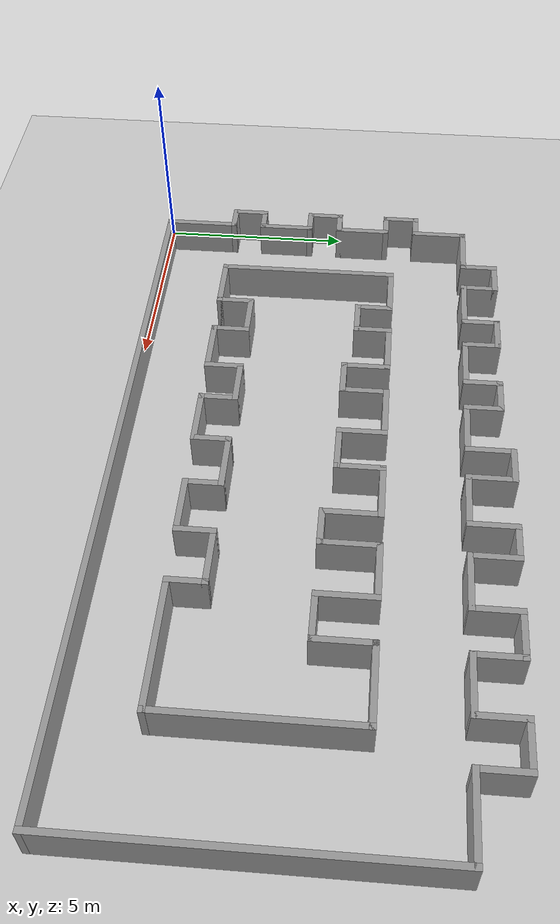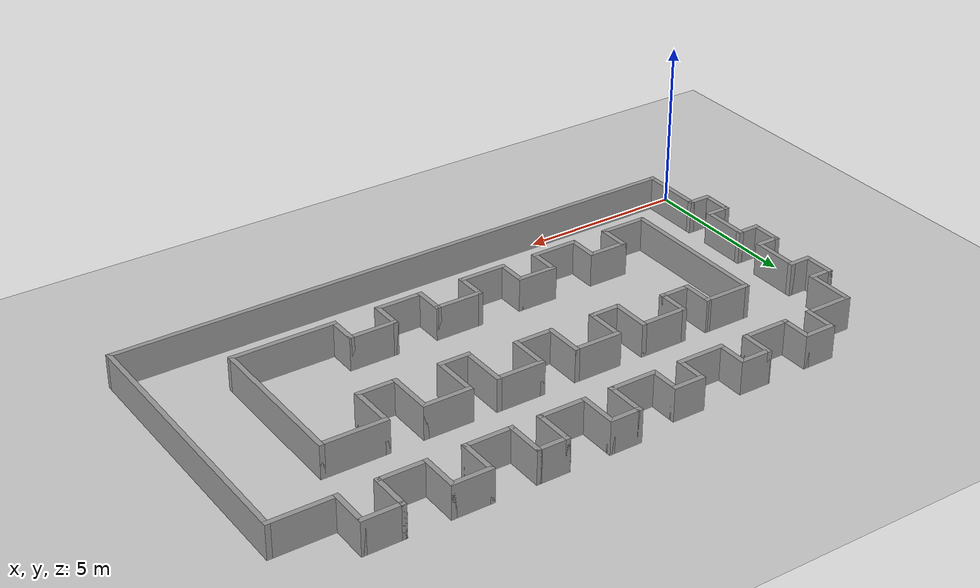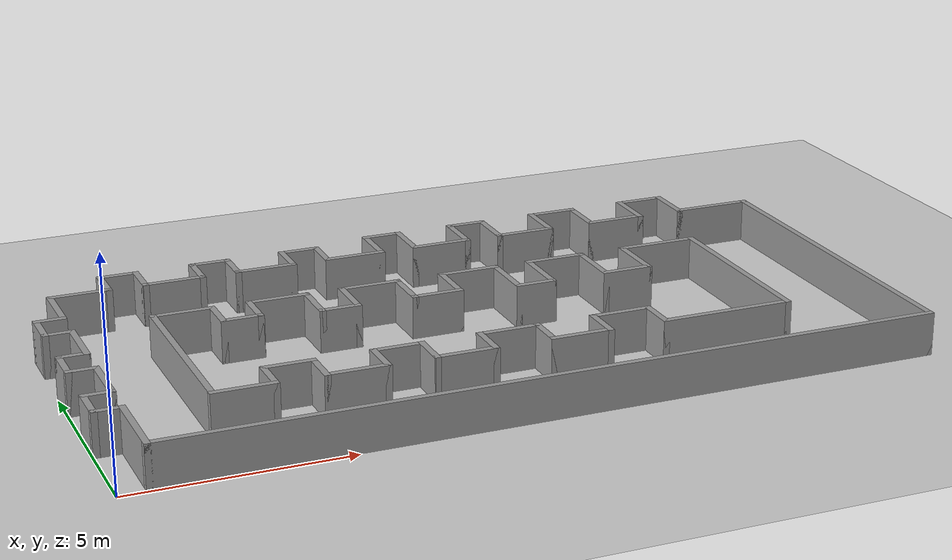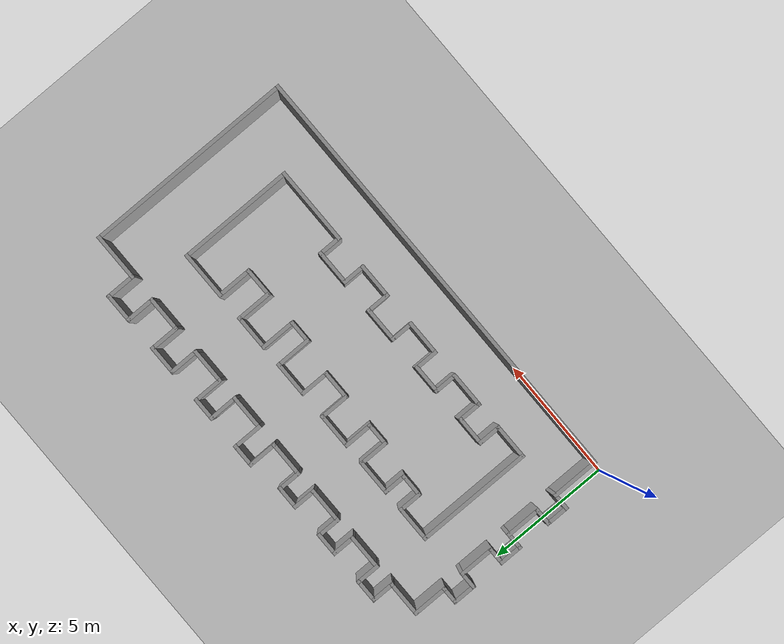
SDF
<sdf version="1.6">
 <world name="default">
  <light name="sun" type="directional">
   <pose>0 0 10 0 -0 0</pose>
   <diffuse>0.8 0.8 0.8 1</diffuse>
   <specular>0.2 0.2 0.2 1</specular>
   <attenuation>
    <range>1000</range>
    <constant>0.9</constant>
    <linear>0.01</linear>
    <quadratic>0.001</quadratic>
   </attenuation>
   <direction>-0.5 0.1 -0.9</direction>
  </light>
  <model name="ground_plane">
   <static>1</static>
   <link name="link">
    <collision name="collision">
     <geometry><plane><normal>0 0 1</normal><size>100 100</size></plane></geometry>
     <surface><friction><ode><mu>100</mu><mu2>50</mu2></ode></friction></surface>
    </collision>
    <visual name="visual">
     <cast_shadows>0</cast_shadows>
     <geometry><plane><normal>0 0 1</normal><size>100 100</size></plane></geometry>
     <material>
      <script><uri>file://media/materials/scripts/gazebo.material</uri><name>Gazebo/Grey</name></script>
     </material>
    </visual>
   </link>
  </model>
  <gravity>0 0 -9.8</gravity>
  <magnetic_field>6e-06 2.3e-05 -4.2e-05</magnetic_field>
  <atmosphere type="adiabatic"/>
  <physics name="default_physics" default="0" type="ode">
   <max_step_size>0.001</max_step_size>
   <real_time_factor>1</real_time_factor>
   <real_time_update_rate>1000</real_time_update_rate>
  </physics>
  <scene><ambient>0.4 0.4 0.4 1</ambient><background>0.7 0.7 0.7 1</background><shadows>1</shadows></scene>
  <spherical_coordinates>
   <surface_model>EARTH_WGS84</surface_model>
   <latitude_deg>0</latitude_deg>
   <longitude_deg>0</longitude_deg>
   <elevation>0</elevation>
   <heading_deg>0</heading_deg>
  </spherical_coordinates>
  <model name="park">
   <pose>9.24545 4.8784 0 0 -0 0</pose>
   <link name="Wall_1">
    <collision name="Wall_1_Collision">
     <geometry><box><size>17.9 0.15 1</size></box></geometry>
     <pose>0 0 0.5 0 -0 0</pose>
    </collision>
    <visual name="Wall_1_Visual">
     <pose>0 0 0.5 0 -0 0</pose>
     <geometry><box><size>17.9 0.15 1</size></box></geometry>
     <material>
      <script><uri>file://media/materials/scripts/gazebo.material</uri><name>Gazebo/Grey</name></script>
      <ambient>1 1 1 1</ambient>
     </material>
     <meta><layer>0</layer></meta>
    </visual>
    <pose>0.3 -4.775 0 0 -0 0</pose>
   </link>
   <link name="Wall_10">
    <collision name="Wall_10_Collision">
     <geometry><box><size>0.75 0.15 1</size></box></geometry>
     <pose>0 0 0.5 0 -0 0</pose>
    </collision>
    <visual name="Wall_10_Visual">
     <pose>0 0 0.5 0 -0 0</pose>
     <geometry><box><size>0.75 0.15 1</size></box></geometry>
     <material>
      <script><uri>file://media/materials/scripts/gazebo.material</uri><name>Gazebo/Grey</name></script>
      <ambient>1 1 1 1</ambient>
     </material>
     <meta><layer>0</layer></meta>
    </visual>
    <pose>-8.875 -2.075 0 0 -0 0</pose>
   </link>
   <link name="Wall_100">
    <collision name="Wall_100_Collision">
     <geometry><box><size>1.5 0.15 1</size></box></geometry>
     <pose>0 0 0.5 0 -0 0</pose>
    </collision>
    <visual name="Wall_100_Visual">
     <pose>0 0 0.5 0 -0 0</pose>
     <geometry><box><size>1.5 0.15 1</size></box></geometry>
     <material>
      <script><uri>file://media/materials/scripts/gazebo.material</uri><name>Gazebo/Grey</name></script>
      <ambient>1 1 1 1</ambient>
     </material>
     <meta><layer>0</layer></meta>
    </visual>
    <pose>3.675 1 0 0 -0 -1.5708</pose>
   </link>
   <link name="Wall_101">
    <collision name="Wall_101_Collision">
     <geometry><box><size>1.25 0.15 1</size></box></geometry>
     <pose>0 0 0.5 0 -0 0</pose>
    </collision>
    <visual name="Wall_101_Visual">
     <pose>0 0 0.5 0 -0 0</pose>
     <geometry><box><size>1.25 0.15 1</size></box></geometry>
     <material>
      <script><uri>file://media/materials/scripts/gazebo.material</uri><name>Gazebo/Grey</name></script>
      <ambient>1 1 1 1</ambient>
     </material>
     <meta><layer>0</layer></meta>
    </visual>
    <pose>4.225 0.325 0 0 -0 0</pose>
   </link>
   <link name="Wall_102">
    <collision name="Wall_102_Collision">
     <geometry><box><size>1.5 0.15 1</size></box></geometry>
     <pose>0 0 0.5 0 -0 0</pose>
    </collision>
    <visual name="Wall_102_Visual">
     <pose>0 0 0.5 0 -0 0</pose>
     <geometry><box><size>1.5 0.15 1</size></box></geometry>
     <material>
      <script><uri>file://media/materials/scripts/gazebo.material</uri><name>Gazebo/Grey</name></script>
      <ambient>1 1 1 1</ambient>
     </material>
     <meta><layer>0</layer></meta>
    </visual>
    <pose>4.775 1 0 0 -0 1.5708</pose>
   </link>
   <link name="Wall_103">
    <collision name="Wall_103_Collision">
     <geometry><box><size>2 0.15 1</size></box></geometry>
     <pose>0 0 0.5 0 -0 0</pose>
    </collision>
    <visual name="Wall_103_Visual">
     <pose>0 0 0.5 0 -0 0</pose>
     <geometry><box><size>2 0.15 1</size></box></geometry>
     <material>
      <script><uri>file://media/materials/scripts/gazebo.material</uri><name>Gazebo/Grey</name></script>
      <ambient>1 1 1 1</ambient>
     </material>
     <meta><layer>0</layer></meta>
    </visual>
    <pose>5.7 1.675 0 0 -0 0</pose>
   </link>
   <link name="Wall_11">
    <collision name="Wall_11_Collision">
     <geometry><box><size>1.5 0.15 1</size></box></geometry>
     <pose>0 0 0.5 0 -0 0</pose>
    </collision>
    <visual name="Wall_11_Visual">
     <pose>0 0 0.5 0 -0 0</pose>
     <geometry><box><size>1.5 0.15 1</size></box></geometry>
     <material>
      <script><uri>file://media/materials/scripts/gazebo.material</uri><name>Gazebo/Grey</name></script>
      <ambient>1 1 1 1</ambient>
     </material>
     <meta><layer>0</layer></meta>
    </visual>
    <pose>-8.575 -1.4 0 0 -0 1.5708</pose>
   </link>
   <link name="Wall_12">
    <collision name="Wall_12_Collision">
     <geometry><box><size>0.75 0.15 1</size></box></geometry>
     <pose>0 0 0.5 0 -0 0</pose>
    </collision>
    <visual name="Wall_12_Visual">
     <pose>0 0 0.5 0 -0 0</pose>
     <geometry><box><size>0.75 0.15 1</size></box></geometry>
     <material>
      <script><uri>file://media/materials/scripts/gazebo.material</uri><name>Gazebo/Grey</name></script>
      <ambient>1 1 1 1</ambient>
     </material>
     <meta><layer>0</layer></meta>
    </visual>
    <pose>-8.875 -0.725 0 0 -0 3.14159</pose>
   </link>
   <link name="Wall_13">
    <collision name="Wall_13_Collision">
     <geometry><box><size>1 0.15 1</size></box></geometry>
     <pose>0 0 0.5 0 -0 0</pose>
    </collision>
    <visual name="Wall_13_Visual">
     <pose>0 0 0.5 0 -0 0</pose>
     <geometry><box><size>1 0.15 1</size></box></geometry>
     <material>
      <script><uri>file://media/materials/scripts/gazebo.material</uri><name>Gazebo/Grey</name></script>
      <ambient>1 1 1 1</ambient>
     </material>
     <meta><layer>0</layer></meta>
    </visual>
    <pose>-9.175 -0.3 0 0 -0 1.5708</pose>
   </link>
   <link name="Wall_14">
    <collision name="Wall_14_Collision">
     <geometry><box><size>0.75 0.15 1</size></box></geometry>
     <pose>0 0 0.5 0 -0 0</pose>
    </collision>
    <visual name="Wall_14_Visual">
     <pose>0 0 0.5 0 -0 0</pose>
     <geometry><box><size>0.75 0.15 1</size></box></geometry>
     <material>
      <script><uri>file://media/materials/scripts/gazebo.material</uri><name>Gazebo/Grey</name></script>
      <ambient>1 1 1 1</ambient>
     </material>
     <meta><layer>0</layer></meta>
    </visual>
    <pose>-8.875 0.125 0 0 -0 0</pose>
   </link>
   <link name="Wall_15">
    <collision name="Wall_15_Collision">
     <geometry><box><size>1.5 0.15 1</size></box></geometry>
     <pose>0 0 0.5 0 -0 0</pose>
    </collision>
    <visual name="Wall_15_Visual">
     <pose>0 0 0.5 0 -0 0</pose>
     <geometry><box><size>1.5 0.15 1</size></box></geometry>
     <material>
      <script><uri>file://media/materials/scripts/gazebo.material</uri><name>Gazebo/Grey</name></script>
      <ambient>1 1 1 1</ambient>
     </material>
     <meta><layer>0</layer></meta>
    </visual>
    <pose>-8.575 0.800001 0 0 -0 1.5708</pose>
   </link>
   <link name="Wall_17">
    <collision name="Wall_17_Collision">
     <geometry><box><size>0.75 0.15 1</size></box></geometry>
     <pose>0 0 0.5 0 -0 0</pose>
    </collision>
    <visual name="Wall_17_Visual">
     <pose>0 0 0.5 0 -0 0</pose>
     <geometry><box><size>0.75 0.15 1</size></box></geometry>
     <material>
      <script><uri>file://media/materials/scripts/gazebo.material</uri><name>Gazebo/Grey</name></script>
      <ambient>1 1 1 1</ambient>
     </material>
     <meta><layer>0</layer></meta>
    </visual>
    <pose>-8.875 1.475 0 0 -0 3.14159</pose>
   </link>
   <link name="Wall_18">
    <collision name="Wall_18_Collision">
     <geometry><box><size>1 0.15 1</size></box></geometry>
     <pose>0 0 0.5 0 -0 0</pose>
    </collision>
    <visual name="Wall_18_Visual">
     <pose>0 0 0.5 0 -0 0</pose>
     <geometry><box><size>1 0.15 1</size></box></geometry>
     <material>
      <script><uri>file://media/materials/scripts/gazebo.material</uri><name>Gazebo/Grey</name></script>
      <ambient>1 1 1 1</ambient>
     </material>
     <meta><layer>0</layer></meta>
    </visual>
    <pose>-9.175 1.9 0 0 -0 1.5708</pose>
   </link>
   <link name="Wall_19">
    <collision name="Wall_19_Collision">
     <geometry><box><size>0.75 0.15 1</size></box></geometry>
     <pose>0 0 0.5 0 -0 0</pose>
    </collision>
    <visual name="Wall_19_Visual">
     <pose>0 0 0.5 0 -0 0</pose>
     <geometry><box><size>0.75 0.15 1</size></box></geometry>
     <material>
      <script><uri>file://media/materials/scripts/gazebo.material</uri><name>Gazebo/Grey</name></script>
      <ambient>1 1 1 1</ambient>
     </material>
     <meta><layer>0</layer></meta>
    </visual>
    <pose>-8.875 2.325 0 0 -0 0</pose>
   </link>
   <link name="Wall_20">
    <collision name="Wall_20_Collision">
     <geometry><box><size>1.5 0.15 1</size></box></geometry>
     <pose>0 0 0.5 0 -0 0</pose>
    </collision>
    <visual name="Wall_20_Visual">
     <pose>0 0 0.5 0 -0 0</pose>
     <geometry><box><size>1.5 0.15 1</size></box></geometry>
     <material>
      <script><uri>file://media/materials/scripts/gazebo.material</uri><name>Gazebo/Grey</name></script>
      <ambient>1 1 1 1</ambient>
     </material>
     <meta><layer>0</layer></meta>
    </visual>
    <pose>-8.575 3 0 0 -0 1.5708</pose>
   </link>
   <link name="Wall_21">
    <collision name="Wall_21_Collision">
     <geometry><box><size>1.5 0.15 1</size></box></geometry>
     <pose>0 0 0.5 0 -0 0</pose>
    </collision>
    <visual name="Wall_21_Visual">
     <pose>0 0 0.5 0 -0 0</pose>
     <geometry><box><size>1.5 0.15 1</size></box></geometry>
     <material>
      <script><uri>file://media/materials/scripts/gazebo.material</uri><name>Gazebo/Grey</name></script>
      <ambient>1 1 1 1</ambient>
     </material>
     <meta><layer>0</layer></meta>
    </visual>
    <pose>-7.9 3.675 0 0 -0 0</pose>
   </link>
   <link name="Wall_22">
    <collision name="Wall_22_Collision">
     <geometry><box><size>1 0.15 1</size></box></geometry>
     <pose>0 0 0.5 0 -0 0</pose>
    </collision>
    <visual name="Wall_22_Visual">
     <pose>0 0 0.5 0 -0 0</pose>
     <geometry><box><size>1 0.15 1</size></box></geometry>
     <material>
      <script><uri>file://media/materials/scripts/gazebo.material</uri><name>Gazebo/Grey</name></script>
      <ambient>1 1 1 1</ambient>
     </material>
     <meta><layer>0</layer></meta>
    </visual>
    <pose>-7.225 4.1 0 0 -0 1.5708</pose>
   </link>
   <link name="Wall_23">
    <collision name="Wall_23_Collision">
     <geometry><box><size>1 0.15 1</size></box></geometry>
     <pose>0 0 0.5 0 -0 0</pose>
    </collision>
    <visual name="Wall_23_Visual">
     <pose>0 0 0.5 0 -0 0</pose>
     <geometry><box><size>1 0.15 1</size></box></geometry>
     <material>
      <script><uri>file://media/materials/scripts/gazebo.material</uri><name>Gazebo/Grey</name></script>
      <ambient>1 1 1 1</ambient>
     </material>
     <meta><layer>0</layer></meta>
    </visual>
    <pose>-6.8 4.525 0 0 -0 0</pose>
   </link>
   <link name="Wall_24">
    <collision name="Wall_24_Collision">
     <geometry><box><size>1 0.15 1</size></box></geometry>
     <pose>0 0 0.5 0 -0 0</pose>
    </collision>
    <visual name="Wall_24_Visual">
     <pose>0 0 0.5 0 -0 0</pose>
     <geometry><box><size>1 0.15 1</size></box></geometry>
     <material>
      <script><uri>file://media/materials/scripts/gazebo.material</uri><name>Gazebo/Grey</name></script>
      <ambient>1 1 1 1</ambient>
     </material>
     <meta><layer>0</layer></meta>
    </visual>
    <pose>-6.375 4.1 0 0 -0 -1.5708</pose>
   </link>
   <link name="Wall_25">
    <collision name="Wall_25_Collision">
     <geometry><box><size>1.5 0.15 1</size></box></geometry>
     <pose>0 0 0.5 0 -0 0</pose>
    </collision>
    <visual name="Wall_25_Visual">
     <pose>0 0 0.5 0 -0 0</pose>
     <geometry><box><size>1.5 0.15 1</size></box></geometry>
     <material>
      <script><uri>file://media/materials/scripts/gazebo.material</uri><name>Gazebo/Grey</name></script>
      <ambient>1 1 1 1</ambient>
     </material>
     <meta><layer>0</layer></meta>
    </visual>
    <pose>-5.7 3.675 0 0 -0 0</pose>
   </link>
   <link name="Wall_27">
    <collision name="Wall_27_Collision">
     <geometry><box><size>1 0.15 1</size></box></geometry>
     <pose>0 0 0.5 0 -0 0</pose>
    </collision>
    <visual name="Wall_27_Visual">
     <pose>0 0 0.5 0 -0 0</pose>
     <geometry><box><size>1 0.15 1</size></box></geometry>
     <material>
      <script><uri>file://media/materials/scripts/gazebo.material</uri><name>Gazebo/Grey</name></script>
      <ambient>1 1 1 1</ambient>
     </material>
     <meta><layer>0</layer></meta>
    </visual>
    <pose>-5.025 4.1 0 0 -0 1.5708</pose>
   </link>
   <link name="Wall_28">
    <collision name="Wall_28_Collision">
     <geometry><box><size>1 0.15 1</size></box></geometry>
     <pose>0 0 0.5 0 -0 0</pose>
    </collision>
    <visual name="Wall_28_Visual">
     <pose>0 0 0.5 0 -0 0</pose>
     <geometry><box><size>1 0.15 1</size></box></geometry>
     <material>
      <script><uri>file://media/materials/scripts/gazebo.material</uri><name>Gazebo/Grey</name></script>
      <ambient>1 1 1 1</ambient>
     </material>
     <meta><layer>0</layer></meta>
    </visual>
    <pose>-4.6 4.525 0 0 -0 0</pose>
   </link>
   <link name="Wall_29">
    <collision name="Wall_29_Collision">
     <geometry><box><size>1 0.15 1</size></box></geometry>
     <pose>0 0 0.5 0 -0 0</pose>
    </collision>
    <visual name="Wall_29_Visual">
     <pose>0 0 0.5 0 -0 0</pose>
     <geometry><box><size>1 0.15 1</size></box></geometry>
     <material>
      <script><uri>file://media/materials/scripts/gazebo.material</uri><name>Gazebo/Grey</name></script>
      <ambient>1 1 1 1</ambient>
     </material>
     <meta><layer>0</layer></meta>
    </visual>
    <pose>-4.175 4.1 0 0 -0 -1.5708</pose>
   </link>
   <link name="Wall_30">
    <collision name="Wall_30_Collision">
     <geometry><box><size>1.5 0.15 1</size></box></geometry>
     <pose>0 0 0.5 0 -0 0</pose>
    </collision>
    <visual name="Wall_30_Visual">
     <pose>0 0 0.5 0 -0 0</pose>
     <geometry><box><size>1.5 0.15 1</size></box></geometry>
     <material>
      <script><uri>file://media/materials/scripts/gazebo.material</uri><name>Gazebo/Grey</name></script>
      <ambient>1 1 1 1</ambient>
     </material>
     <meta><layer>0</layer></meta>
    </visual>
    <pose>-3.5 3.675 0 0 -0 0</pose>
   </link>
   <link name="Wall_31">
    <collision name="Wall_31_Collision">
     <geometry><box><size>1 0.15 1</size></box></geometry>
     <pose>0 0 0.5 0 -0 0</pose>
    </collision>
    <visual name="Wall_31_Visual">
     <pose>0 0 0.5 0 -0 0</pose>
     <geometry><box><size>1 0.15 1</size></box></geometry>
     <material>
      <script><uri>file://media/materials/scripts/gazebo.material</uri><name>Gazebo/Grey</name></script>
      <ambient>1 1 1 1</ambient>
     </material>
     <meta><layer>0</layer></meta>
    </visual>
    <pose>-2.825 4.1 0 0 -0 1.5708</pose>
   </link>
   <link name="Wall_32">
    <collision name="Wall_32_Collision">
     <geometry><box><size>1 0.15 1</size></box></geometry>
     <pose>0 0 0.5 0 -0 0</pose>
    </collision>
    <visual name="Wall_32_Visual">
     <pose>0 0 0.5 0 -0 0</pose>
     <geometry><box><size>1 0.15 1</size></box></geometry>
     <material>
      <script><uri>file://media/materials/scripts/gazebo.material</uri><name>Gazebo/Grey</name></script>
      <ambient>1 1 1 1</ambient>
     </material>
     <meta><layer>0</layer></meta>
    </visual>
    <pose>-2.4 4.525 0 0 -0 0</pose>
   </link>
   <link name="Wall_33">
    <collision name="Wall_33_Collision">
     <geometry><box><size>1 0.15 1</size></box></geometry>
     <pose>0 0 0.5 0 -0 0</pose>
    </collision>
    <visual name="Wall_33_Visual">
     <pose>0 0 0.5 0 -0 0</pose>
     <geometry><box><size>1 0.15 1</size></box></geometry>
     <material>
      <script><uri>file://media/materials/scripts/gazebo.material</uri><name>Gazebo/Grey</name></script>
      <ambient>1 1 1 1</ambient>
     </material>
     <meta><layer>0</layer></meta>
    </visual>
    <pose>-1.975 4.1 0 0 -0 -1.5708</pose>
   </link>
   <link name="Wall_34">
    <collision name="Wall_34_Collision">
     <geometry><box><size>1.5 0.15 1</size></box></geometry>
     <pose>0 0 0.5 0 -0 0</pose>
    </collision>
    <visual name="Wall_34_Visual">
     <pose>0 0 0.5 0 -0 0</pose>
     <geometry><box><size>1.5 0.15 1</size></box></geometry>
     <material>
      <script><uri>file://media/materials/scripts/gazebo.material</uri><name>Gazebo/Grey</name></script>
      <ambient>1 1 1 1</ambient>
     </material>
     <meta><layer>0</layer></meta>
    </visual>
    <pose>-1.3 3.675 0 0 -0 0</pose>
   </link>
   <link name="Wall_35">
    <collision name="Wall_35_Collision">
     <geometry><box><size>1.25 0.15 1</size></box></geometry>
     <pose>0 0 0.5 0 -0 0</pose>
    </collision>
    <visual name="Wall_35_Visual">
     <pose>0 0 0.5 0 -0 0</pose>
     <geometry><box><size>1.25 0.15 1</size></box></geometry>
     <material>
      <script><uri>file://media/materials/scripts/gazebo.material</uri><name>Gazebo/Grey</name></script>
      <ambient>1 1 1 1</ambient>
     </material>
     <meta><layer>0</layer></meta>
    </visual>
    <pose>-0.625 4.225 0 0 -0 1.5708</pose>
   </link>
   <link name="Wall_36">
    <collision name="Wall_36_Collision">
     <geometry><box><size>1 0.15 1</size></box></geometry>
     <pose>0 0 0.5 0 -0 0</pose>
    </collision>
    <visual name="Wall_36_Visual">
     <pose>0 0 0.5 0 -0 0</pose>
     <geometry><box><size>1 0.15 1</size></box></geometry>
     <material>
      <script><uri>file://media/materials/scripts/gazebo.material</uri><name>Gazebo/Grey</name></script>
      <ambient>1 1 1 1</ambient>
     </material>
     <meta><layer>0</layer></meta>
    </visual>
    <pose>-0.2 4.775 0 0 -0 0</pose>
   </link>
   <link name="Wall_37">
    <collision name="Wall_37_Collision">
     <geometry><box><size>1.25 0.15 1</size></box></geometry>
     <pose>0 0 0.5 0 -0 0</pose>
    </collision>
    <visual name="Wall_37_Visual">
     <pose>0 0 0.5 0 -0 0</pose>
     <geometry><box><size>1.25 0.15 1</size></box></geometry>
     <material>
      <script><uri>file://media/materials/scripts/gazebo.material</uri><name>Gazebo/Grey</name></script>
      <ambient>1 1 1 1</ambient>
     </material>
     <meta><layer>0</layer></meta>
    </visual>
    <pose>0.225 4.225 0 0 -0 -1.5708</pose>
   </link>
   <link name="Wall_38">
    <collision name="Wall_38_Collision">
     <geometry><box><size>1.5 0.15 1</size></box></geometry>
     <pose>0 0 0.5 0 -0 0</pose>
    </collision>
    <visual name="Wall_38_Visual">
     <pose>0 0 0.5 0 -0 0</pose>
     <geometry><box><size>1.5 0.15 1</size></box></geometry>
     <material>
      <script><uri>file://media/materials/scripts/gazebo.material</uri><name>Gazebo/Grey</name></script>
      <ambient>1 1 1 1</ambient>
     </material>
     <meta><layer>0</layer></meta>
    </visual>
    <pose>0.9 3.675 0 0 -0 0</pose>
   </link>
   <link name="Wall_39">
    <collision name="Wall_39_Collision">
     <geometry><box><size>1.25 0.15 1</size></box></geometry>
     <pose>0 0 0.5 0 -0 0</pose>
    </collision>
    <visual name="Wall_39_Visual">
     <pose>0 0 0.5 0 -0 0</pose>
     <geometry><box><size>1.25 0.15 1</size></box></geometry>
     <material>
      <script><uri>file://media/materials/scripts/gazebo.material</uri><name>Gazebo/Grey</name></script>
      <ambient>1 1 1 1</ambient>
     </material>
     <meta><layer>0</layer></meta>
    </visual>
    <pose>1.575 4.225 0 0 -0 1.5708</pose>
   </link>
   <link name="Wall_40">
    <collision name="Wall_40_Collision">
     <geometry><box><size>1 0.15 1</size></box></geometry>
     <pose>0 0 0.5 0 -0 0</pose>
    </collision>
    <visual name="Wall_40_Visual">
     <pose>0 0 0.5 0 -0 0</pose>
     <geometry><box><size>1 0.15 1</size></box></geometry>
     <material>
      <script><uri>file://media/materials/scripts/gazebo.material</uri><name>Gazebo/Grey</name></script>
      <ambient>1 1 1 1</ambient>
     </material>
     <meta><layer>0</layer></meta>
    </visual>
    <pose>2 4.775 0 0 -0 0</pose>
   </link>
   <link name="Wall_41">
    <collision name="Wall_41_Collision">
     <geometry><box><size>1.25 0.15 1</size></box></geometry>
     <pose>0 0 0.5 0 -0 0</pose>
    </collision>
    <visual name="Wall_41_Visual">
     <pose>0 0 0.5 0 -0 0</pose>
     <geometry><box><size>1.25 0.15 1</size></box></geometry>
     <material>
      <script><uri>file://media/materials/scripts/gazebo.material</uri><name>Gazebo/Grey</name></script>
      <ambient>1 1 1 1</ambient>
     </material>
     <meta><layer>0</layer></meta>
    </visual>
    <pose>2.425 4.225 0 0 -0 -1.5708</pose>
   </link>
   <link name="Wall_42">
    <collision name="Wall_42_Collision">
     <geometry><box><size>1.5 0.15 1</size></box></geometry>
     <pose>0 0 0.5 0 -0 0</pose>
    </collision>
    <visual name="Wall_42_Visual">
     <pose>0 0 0.5 0 -0 0</pose>
     <geometry><box><size>1.5 0.15 1</size></box></geometry>
     <material>
      <script><uri>file://media/materials/scripts/gazebo.material</uri><name>Gazebo/Grey</name></script>
      <ambient>1 1 1 1</ambient>
     </material>
     <meta><layer>0</layer></meta>
    </visual>
    <pose>3.1 3.675 0 0 -0 0</pose>
   </link>
   <link name="Wall_43">
    <collision name="Wall_43_Collision">
     <geometry><box><size>1.25 0.15 1</size></box></geometry>
     <pose>0 0 0.5 0 -0 0</pose>
    </collision>
    <visual name="Wall_43_Visual">
     <pose>0 0 0.5 0 -0 0</pose>
     <geometry><box><size>1.25 0.15 1</size></box></geometry>
     <material>
      <script><uri>file://media/materials/scripts/gazebo.material</uri><name>Gazebo/Grey</name></script>
      <ambient>1 1 1 1</ambient>
     </material>
     <meta><layer>0</layer></meta>
    </visual>
    <pose>3.775 4.225 0 0 -0 1.5708</pose>
   </link>
   <link name="Wall_44">
    <collision name="Wall_44_Collision">
     <geometry><box><size>1.25 0.15 1</size></box></geometry>
     <pose>0 0 0.5 0 -0 0</pose>
    </collision>
    <visual name="Wall_44_Visual">
     <pose>0 0 0.5 0 -0 0</pose>
     <geometry><box><size>1.25 0.15 1</size></box></geometry>
     <material>
      <script><uri>file://media/materials/scripts/gazebo.material</uri><name>Gazebo/Grey</name></script>
      <ambient>1 1 1 1</ambient>
     </material>
     <meta><layer>0</layer></meta>
    </visual>
    <pose>4.325 4.775 0 0 -0 0</pose>
   </link>
   <link name="Wall_45">
    <collision name="Wall_45_Collision">
     <geometry><box><size>1.25 0.15 1</size></box></geometry>
     <pose>0 0 0.5 0 -0 0</pose>
    </collision>
    <visual name="Wall_45_Visual">
     <pose>0 0 0.5 0 -0 0</pose>
     <geometry><box><size>1.25 0.15 1</size></box></geometry>
     <material>
      <script><uri>file://media/materials/scripts/gazebo.material</uri><name>Gazebo/Grey</name></script>
      <ambient>1 1 1 1</ambient>
     </material>
     <meta><layer>0</layer></meta>
    </visual>
    <pose>4.875 4.225 0 0 -0 -1.5708</pose>
   </link>
   <link name="Wall_46">
    <collision name="Wall_46_Collision">
     <geometry><box><size>1.5 0.15 1</size></box></geometry>
     <pose>0 0 0.5 0 -0 0</pose>
    </collision>
    <visual name="Wall_46_Visual">
     <pose>0 0 0.5 0 -0 0</pose>
     <geometry><box><size>1.5 0.15 1</size></box></geometry>
     <material>
      <script><uri>file://media/materials/scripts/gazebo.material</uri><name>Gazebo/Grey</name></script>
      <ambient>1 1 1 1</ambient>
     </material>
     <meta><layer>0</layer></meta>
    </visual>
    <pose>5.55 3.675 0 0 -0 0</pose>
   </link>
   <link name="Wall_47">
    <collision name="Wall_47_Collision">
     <geometry><box><size>1.25 0.15 1</size></box></geometry>
     <pose>0 0 0.5 0 -0 0</pose>
    </collision>
    <visual name="Wall_47_Visual">
     <pose>0 0 0.5 0 -0 0</pose>
     <geometry><box><size>1.25 0.15 1</size></box></geometry>
     <material>
      <script><uri>file://media/materials/scripts/gazebo.material</uri><name>Gazebo/Grey</name></script>
      <ambient>1 1 1 1</ambient>
     </material>
     <meta><layer>0</layer></meta>
    </visual>
    <pose>6.225 4.225 0 0 -0 1.5708</pose>
   </link>
   <link name="Wall_48">
    <collision name="Wall_48_Collision">
     <geometry><box><size>1.25 0.15 1</size></box></geometry>
     <pose>0 0 0.5 0 -0 0</pose>
    </collision>
    <visual name="Wall_48_Visual">
     <pose>0 0 0.5 0 -0 0</pose>
     <geometry><box><size>1.25 0.15 1</size></box></geometry>
     <material>
      <script><uri>file://media/materials/scripts/gazebo.material</uri><name>Gazebo/Grey</name></script>
      <ambient>1 1 1 1</ambient>
     </material>
     <meta><layer>0</layer></meta>
    </visual>
    <pose>6.775 4.775 0 0 -0 0</pose>
   </link>
   <link name="Wall_49">
    <collision name="Wall_49_Collision">
     <geometry><box><size>1.25 0.15 1</size></box></geometry>
     <pose>0 0 0.5 0 -0 0</pose>
    </collision>
    <visual name="Wall_49_Visual">
     <pose>0 0 0.5 0 -0 0</pose>
     <geometry><box><size>1.25 0.15 1</size></box></geometry>
     <material>
      <script><uri>file://media/materials/scripts/gazebo.material</uri><name>Gazebo/Grey</name></script>
      <ambient>1 1 1 1</ambient>
     </material>
     <meta><layer>0</layer></meta>
    </visual>
    <pose>7.325 4.225 0 0 -0 -1.5708</pose>
   </link>
   <link name="Wall_50">
    <collision name="Wall_50_Collision">
     <geometry><box><size>2 0.15 1</size></box></geometry>
     <pose>0 0 0.5 0 -0 0</pose>
    </collision>
    <visual name="Wall_50_Visual">
     <pose>0 0 0.5 0 -0 0</pose>
     <geometry><box><size>2 0.15 1</size></box></geometry>
     <material>
      <script><uri>file://media/materials/scripts/gazebo.material</uri><name>Gazebo/Grey</name></script>
      <ambient>1 1 1 1</ambient>
     </material>
     <meta><layer>0</layer></meta>
    </visual>
    <pose>8.25 3.675 0 0 -0 0</pose>
   </link>
   <link name="Wall_55">
    <collision name="Wall_55_Collision">
     <geometry><box><size>1.5 0.15 1</size></box></geometry>
     <pose>0 0 0.5 0 -0 0</pose>
    </collision>
    <visual name="Wall_55_Visual">
     <pose>0 0 0.5 0 -0 0</pose>
     <geometry><box><size>1.5 0.15 1</size></box></geometry>
     <material>
      <script><uri>file://media/materials/scripts/gazebo.material</uri><name>Gazebo/Grey</name></script>
      <ambient>1 1 1 1</ambient>
     </material>
     <meta><layer>0</layer></meta>
    </visual>
    <pose>-6.05 -2.925 0 0 -0 0</pose>
   </link>
   <link name="Wall_56">
    <collision name="Wall_56_Collision">
     <geometry><box><size>1 0.15 1</size></box></geometry>
     <pose>0 0 0.5 0 -0 0</pose>
    </collision>
    <visual name="Wall_56_Visual">
     <pose>0 0 0.5 0 -0 0</pose>
     <geometry><box><size>1 0.15 1</size></box></geometry>
     <material>
      <script><uri>file://media/materials/scripts/gazebo.material</uri><name>Gazebo/Grey</name></script>
      <ambient>1 1 1 1</ambient>
     </material>
     <meta><layer>0</layer></meta>
    </visual>
    <pose>-5.375 -2.5 0 0 -0 1.5708</pose>
   </link>
   <link name="Wall_57">
    <collision name="Wall_57_Collision">
     <geometry><box><size>1.25 0.15 1</size></box></geometry>
     <pose>0 0 0.5 0 -0 0</pose>
    </collision>
    <visual name="Wall_57_Visual">
     <pose>0 0 0.5 0 -0 0</pose>
     <geometry><box><size>1.25 0.15 1</size></box></geometry>
     <material>
      <script><uri>file://media/materials/scripts/gazebo.material</uri><name>Gazebo/Grey</name></script>
      <ambient>1 1 1 1</ambient>
     </material>
     <meta><layer>0</layer></meta>
    </visual>
    <pose>-4.825 -2.075 0 0 -0 0</pose>
   </link>
   <link name="Wall_58">
    <collision name="Wall_58_Collision">
     <geometry><box><size>1 0.15 1</size></box></geometry>
     <pose>0 0 0.5 0 -0 0</pose>
    </collision>
    <visual name="Wall_58_Visual">
     <pose>0 0 0.5 0 -0 0</pose>
     <geometry><box><size>1 0.15 1</size></box></geometry>
     <material>
      <script><uri>file://media/materials/scripts/gazebo.material</uri><name>Gazebo/Grey</name></script>
      <ambient>1 1 1 1</ambient>
     </material>
     <meta><layer>0</layer></meta>
    </visual>
    <pose>-4.275 -2.5 0 0 -0 -1.5708</pose>
   </link>
   <link name="Wall_59">
    <collision name="Wall_59_Collision">
     <geometry><box><size>1.5 0.15 1</size></box></geometry>
     <pose>0 0 0.5 0 -0 0</pose>
    </collision>
    <visual name="Wall_59_Visual">
     <pose>0 0 0.5 0 -0 0</pose>
     <geometry><box><size>1.5 0.15 1</size></box></geometry>
     <material>
      <script><uri>file://media/materials/scripts/gazebo.material</uri><name>Gazebo/Grey</name></script>
      <ambient>1 1 1 1</ambient>
     </material>
     <meta><layer>0</layer></meta>
    </visual>
    <pose>-3.6 -2.925 0 0 -0 0</pose>
   </link>
   <link name="Wall_6">
    <collision name="Wall_6_Collision">
     <geometry><box><size>2 0.15 1</size></box></geometry>
     <pose>0 0 0.5 0 -0 0</pose>
    </collision>
    <visual name="Wall_6_Visual">
     <pose>0 0 0.5 0 -0 0</pose>
     <geometry><box><size>2 0.15 1</size></box></geometry>
     <material>
      <script><uri>file://media/materials/scripts/gazebo.material</uri><name>Gazebo/Grey</name></script>
      <ambient>1 1 1 1</ambient>
     </material>
     <meta><layer>0</layer></meta>
    </visual>
    <pose>-8.575 -3.85 0 0 -0 1.5708</pose>
   </link>
   <link name="Wall_60">
    <collision name="Wall_60_Collision">
     <geometry><box><size>1 0.15 1</size></box></geometry>
     <pose>0 0 0.5 0 -0 0</pose>
    </collision>
    <visual name="Wall_60_Visual">
     <pose>0 0 0.5 0 -0 0</pose>
     <geometry><box><size>1 0.15 1</size></box></geometry>
     <material>
      <script><uri>file://media/materials/scripts/gazebo.material</uri><name>Gazebo/Grey</name></script>
      <ambient>1 1 1 1</ambient>
     </material>
     <meta><layer>0</layer></meta>
    </visual>
    <pose>-2.925 -2.5 0 0 -0 1.5708</pose>
   </link>
   <link name="Wall_61">
    <collision name="Wall_61_Collision">
     <geometry><box><size>1.25 0.15 1</size></box></geometry>
     <pose>0 0 0.5 0 -0 0</pose>
    </collision>
    <visual name="Wall_61_Visual">
     <pose>0 0 0.5 0 -0 0</pose>
     <geometry><box><size>1.25 0.15 1</size></box></geometry>
     <material>
      <script><uri>file://media/materials/scripts/gazebo.material</uri><name>Gazebo/Grey</name></script>
      <ambient>1 1 1 1</ambient>
     </material>
     <meta><layer>0</layer></meta>
    </visual>
    <pose>-2.375 -2.075 0 0 -0 0</pose>
   </link>
   <link name="Wall_62">
    <collision name="Wall_62_Collision">
     <geometry><box><size>1 0.15 1</size></box></geometry>
     <pose>0 0 0.5 0 -0 0</pose>
    </collision>
    <visual name="Wall_62_Visual">
     <pose>0 0 0.5 0 -0 0</pose>
     <geometry><box><size>1 0.15 1</size></box></geometry>
     <material>
      <script><uri>file://media/materials/scripts/gazebo.material</uri><name>Gazebo/Grey</name></script>
      <ambient>1 1 1 1</ambient>
     </material>
     <meta><layer>0</layer></meta>
    </visual>
    <pose>-1.825 -2.5 0 0 -0 -1.5708</pose>
   </link>
   <link name="Wall_63">
    <collision name="Wall_63_Collision">
     <geometry><box><size>1.5 0.15 1</size></box></geometry>
     <pose>0 0 0.5 0 -0 0</pose>
    </collision>
    <visual name="Wall_63_Visual">
     <pose>0 0 0.5 0 -0 0</pose>
     <geometry><box><size>1.5 0.15 1</size></box></geometry>
     <material>
      <script><uri>file://media/materials/scripts/gazebo.material</uri><name>Gazebo/Grey</name></script>
      <ambient>1 1 1 1</ambient>
     </material>
     <meta><layer>0</layer></meta>
    </visual>
    <pose>-1.15 -2.925 0 0 -0 0</pose>
   </link>
   <link name="Wall_64">
    <collision name="Wall_64_Collision">
     <geometry><box><size>1 0.15 1</size></box></geometry>
     <pose>0 0 0.5 0 -0 0</pose>
    </collision>
    <visual name="Wall_64_Visual">
     <pose>0 0 0.5 0 -0 0</pose>
     <geometry><box><size>1 0.15 1</size></box></geometry>
     <material>
      <script><uri>file://media/materials/scripts/gazebo.material</uri><name>Gazebo/Grey</name></script>
      <ambient>1 1 1 1</ambient>
     </material>
     <meta><layer>0</layer></meta>
    </visual>
    <pose>-0.475 -2.5 0 0 -0 1.5708</pose>
   </link>
   <link name="Wall_65">
    <collision name="Wall_65_Collision">
     <geometry><box><size>1.5 0.15 1</size></box></geometry>
     <pose>0 0 0.5 0 -0 0</pose>
    </collision>
    <visual name="Wall_65_Visual">
     <pose>0 0 0.5 0 -0 0</pose>
     <geometry><box><size>1.5 0.15 1</size></box></geometry>
     <material>
      <script><uri>file://media/materials/scripts/gazebo.material</uri><name>Gazebo/Grey</name></script>
      <ambient>1 1 1 1</ambient>
     </material>
     <meta><layer>0</layer></meta>
    </visual>
    <pose>0.2 -2.075 0 0 -0 0</pose>
   </link>
   <link name="Wall_66">
    <collision name="Wall_66_Collision">
     <geometry><box><size>1 0.15 1</size></box></geometry>
     <pose>0 0 0.5 0 -0 0</pose>
    </collision>
    <visual name="Wall_66_Visual">
     <pose>0 0 0.5 0 -0 0</pose>
     <geometry><box><size>1 0.15 1</size></box></geometry>
     <material>
      <script><uri>file://media/materials/scripts/gazebo.material</uri><name>Gazebo/Grey</name></script>
      <ambient>1 1 1 1</ambient>
     </material>
     <meta><layer>0</layer></meta>
    </visual>
    <pose>0.875 -2.5 0 0 -0 -1.5708</pose>
   </link>
   <link name="Wall_67">
    <collision name="Wall_67_Collision">
     <geometry><box><size>1.5 0.15 1</size></box></geometry>
     <pose>0 0 0.5 0 -0 0</pose>
    </collision>
    <visual name="Wall_67_Visual">
     <pose>0 0 0.5 0 -0 0</pose>
     <geometry><box><size>1.5 0.15 1</size></box></geometry>
     <material>
      <script><uri>file://media/materials/scripts/gazebo.material</uri><name>Gazebo/Grey</name></script>
      <ambient>1 1 1 1</ambient>
     </material>
     <meta><layer>0</layer></meta>
    </visual>
    <pose>1.55 -2.925 0 0 -0 0</pose>
   </link>
   <link name="Wall_68">
    <collision name="Wall_68_Collision">
     <geometry><box><size>1 0.15 1</size></box></geometry>
     <pose>0 0 0.5 0 -0 0</pose>
    </collision>
    <visual name="Wall_68_Visual">
     <pose>0 0 0.5 0 -0 0</pose>
     <geometry><box><size>1 0.15 1</size></box></geometry>
     <material>
      <script><uri>file://media/materials/scripts/gazebo.material</uri><name>Gazebo/Grey</name></script>
      <ambient>1 1 1 1</ambient>
     </material>
     <meta><layer>0</layer></meta>
    </visual>
    <pose>2.225 -2.5 0 0 -0 1.5708</pose>
   </link>
   <link name="Wall_69">
    <collision name="Wall_69_Collision">
     <geometry><box><size>1.5 0.15 1</size></box></geometry>
     <pose>0 0 0.5 0 -0 0</pose>
    </collision>
    <visual name="Wall_69_Visual">
     <pose>0 0 0.5 0 -0 0</pose>
     <geometry><box><size>1.5 0.15 1</size></box></geometry>
     <material>
      <script><uri>file://media/materials/scripts/gazebo.material</uri><name>Gazebo/Grey</name></script>
      <ambient>1 1 1 1</ambient>
     </material>
     <meta><layer>0</layer></meta>
    </visual>
    <pose>2.9 -2.075 0 0 -0 0</pose>
   </link>
   <link name="Wall_7">
    <collision name="Wall_7_Collision">
     <geometry><box><size>0.75 0.15 1</size></box></geometry>
     <pose>0 0 0.5 0 -0 0</pose>
    </collision>
    <visual name="Wall_7_Visual">
     <pose>0 0 0.5 0 -0 0</pose>
     <geometry><box><size>0.75 0.15 1</size></box></geometry>
     <material>
      <script><uri>file://media/materials/scripts/gazebo.material</uri><name>Gazebo/Grey</name></script>
      <ambient>1 1 1 1</ambient>
     </material>
     <meta><layer>0</layer></meta>
    </visual>
    <pose>-8.875 -2.925 0 0 -0 3.14159</pose>
   </link>
   <link name="Wall_70">
    <collision name="Wall_70_Collision">
     <geometry><box><size>1 0.15 1</size></box></geometry>
     <pose>0 0 0.5 0 -0 0</pose>
    </collision>
    <visual name="Wall_70_Visual">
     <pose>0 0 0.5 0 -0 0</pose>
     <geometry><box><size>1 0.15 1</size></box></geometry>
     <material>
      <script><uri>file://media/materials/scripts/gazebo.material</uri><name>Gazebo/Grey</name></script>
      <ambient>1 1 1 1</ambient>
     </material>
     <meta><layer>0</layer></meta>
    </visual>
    <pose>3.575 -2.5 0 0 -0 -1.5708</pose>
   </link>
   <link name="Wall_71">
    <collision name="Wall_71_Collision">
     <geometry><box><size>3.2 0.15 1</size></box></geometry>
     <pose>0 0 0.5 0 -0 0</pose>
    </collision>
    <visual name="Wall_71_Visual">
     <pose>0 0 0.5 0 -0 0</pose>
     <geometry><box><size>3.2 0.15 1</size></box></geometry>
     <material>
      <script><uri>file://media/materials/scripts/gazebo.material</uri><name>Gazebo/Grey</name></script>
      <ambient>1 1 1 1</ambient>
     </material>
     <meta><layer>0</layer></meta>
    </visual>
    <pose>5.1 -2.925 0 0 -0 0</pose>
   </link>
   <link name="Wall_76">
    <collision name="Wall_76_Collision">
     <geometry><box><size>4.75 0.15 1</size></box></geometry>
     <pose>0 0 0.5 0 -0 0</pose>
    </collision>
    <visual name="Wall_76_Visual">
     <pose>0 0 0.5 0 -0 0</pose>
     <geometry><box><size>4.75 0.15 1</size></box></geometry>
     <material>
      <script><uri>file://media/materials/scripts/gazebo.material</uri><name>Gazebo/Grey</name></script>
      <ambient>1 1 1 1</ambient>
     </material>
     <meta><layer>0</layer></meta>
    </visual>
    <pose>-6.725 -0.625 0 0 -0 1.5708</pose>
   </link>
   <link name="Wall_79">
    <collision name="Wall_79_Collision">
     <geometry><box><size>4.75 0.15 1</size></box></geometry>
     <pose>0 0 0.5 0 -0 0</pose>
    </collision>
    <visual name="Wall_79_Visual">
     <pose>0 0 0.5 0 -0 0</pose>
     <geometry><box><size>4.75 0.15 1</size></box></geometry>
     <material>
      <script><uri>file://media/materials/scripts/gazebo.material</uri><name>Gazebo/Grey</name></script>
      <ambient>1 1 1 1</ambient>
     </material>
     <meta><layer>0</layer></meta>
    </visual>
    <pose>6.625 -0.625 0 0 -0 -1.5708</pose>
   </link>
   <link name="Wall_81">
    <collision name="Wall_81_Collision">
     <geometry><box><size>8.6 0.15 1</size></box></geometry>
     <pose>0 0 0.5 0 -0 0</pose>
    </collision>
    <visual name="Wall_81_Visual">
     <pose>0 0 0.5 0 -0 0</pose>
     <geometry><box><size>8.6 0.15 1</size></box></geometry>
     <material>
      <script><uri>file://media/materials/scripts/gazebo.material</uri><name>Gazebo/Grey</name></script>
      <ambient>1 1 1 1</ambient>
     </material>
     <meta><layer>0</layer></meta>
    </visual>
    <pose>9.175 -0.549999 0 0 -0 -1.5708</pose>
   </link>
   <link name="Wall_83">
    <collision name="Wall_83_Collision">
     <geometry><box><size>1.5 0.15 1</size></box></geometry>
     <pose>0 0 0.5 0 -0 0</pose>
    </collision>
    <visual name="Wall_83_Visual">
     <pose>0 0 0.5 0 -0 0</pose>
     <geometry><box><size>1.5 0.15 1</size></box></geometry>
     <material>
      <script><uri>file://media/materials/scripts/gazebo.material</uri><name>Gazebo/Grey</name></script>
      <ambient>1 1 1 1</ambient>
     </material>
     <meta><layer>0</layer></meta>
    </visual>
    <pose>-6.05 1.675 0 0 -0 0</pose>
   </link>
   <link name="Wall_84">
    <collision name="Wall_84_Collision">
     <geometry><box><size>1 0.15 1</size></box></geometry>
     <pose>0 0 0.5 0 -0 0</pose>
    </collision>
    <visual name="Wall_84_Visual">
     <pose>0 0 0.5 0 -0 0</pose>
     <geometry><box><size>1 0.15 1</size></box></geometry>
     <material>
      <script><uri>file://media/materials/scripts/gazebo.material</uri><name>Gazebo/Grey</name></script>
      <ambient>1 1 1 1</ambient>
     </material>
     <meta><layer>0</layer></meta>
    </visual>
    <pose>-5.375 1.25 0 0 -0 -1.5708</pose>
   </link>
   <link name="Wall_85">
    <collision name="Wall_85_Collision">
     <geometry><box><size>1 0.15 1</size></box></geometry>
     <pose>0 0 0.5 0 -0 0</pose>
    </collision>
    <visual name="Wall_85_Visual">
     <pose>0 0 0.5 0 -0 0</pose>
     <geometry><box><size>1 0.15 1</size></box></geometry>
     <material>
      <script><uri>file://media/materials/scripts/gazebo.material</uri><name>Gazebo/Grey</name></script>
      <ambient>1 1 1 1</ambient>
     </material>
     <meta><layer>0</layer></meta>
    </visual>
    <pose>-4.95 0.825 0 0 -0 0</pose>
   </link>
   <link name="Wall_86">
    <collision name="Wall_86_Collision">
     <geometry><box><size>1 0.15 1</size></box></geometry>
     <pose>0 0 0.5 0 -0 0</pose>
    </collision>
    <visual name="Wall_86_Visual">
     <pose>0 0 0.5 0 -0 0</pose>
     <geometry><box><size>1 0.15 1</size></box></geometry>
     <material>
      <script><uri>file://media/materials/scripts/gazebo.material</uri><name>Gazebo/Grey</name></script>
      <ambient>1 1 1 1</ambient>
     </material>
     <meta><layer>0</layer></meta>
    </visual>
    <pose>-4.525 1.25 0 0 -0 1.5708</pose>
   </link>
   <link name="Wall_87">
    <collision name="Wall_87_Collision">
     <geometry><box><size>1.5 0.15 1</size></box></geometry>
     <pose>0 0 0.5 0 -0 0</pose>
    </collision>
    <visual name="Wall_87_Visual">
     <pose>0 0 0.5 0 -0 0</pose>
     <geometry><box><size>1.5 0.15 1</size></box></geometry>
     <material>
      <script><uri>file://media/materials/scripts/gazebo.material</uri><name>Gazebo/Grey</name></script>
      <ambient>1 1 1 1</ambient>
     </material>
     <meta><layer>0</layer></meta>
    </visual>
    <pose>-3.85 1.675 0 0 -0 0</pose>
   </link>
   <link name="Wall_88">
    <collision name="Wall_88_Collision">
     <geometry><box><size>1.25 0.15 1</size></box></geometry>
     <pose>0 0 0.5 0 -0 0</pose>
    </collision>
    <visual name="Wall_88_Visual">
     <pose>0 0 0.5 0 -0 0</pose>
     <geometry><box><size>1.25 0.15 1</size></box></geometry>
     <material>
      <script><uri>file://media/materials/scripts/gazebo.material</uri><name>Gazebo/Grey</name></script>
      <ambient>1 1 1 1</ambient>
     </material>
     <meta><layer>0</layer></meta>
    </visual>
    <pose>-3.175 1.125 0 0 -0 -1.5708</pose>
   </link>
   <link name="Wall_89">
    <collision name="Wall_89_Collision">
     <geometry><box><size>1 0.15 1</size></box></geometry>
     <pose>0 0 0.5 0 -0 0</pose>
    </collision>
    <visual name="Wall_89_Visual">
     <pose>0 0 0.5 0 -0 0</pose>
     <geometry><box><size>1 0.15 1</size></box></geometry>
     <material>
      <script><uri>file://media/materials/scripts/gazebo.material</uri><name>Gazebo/Grey</name></script>
      <ambient>1 1 1 1</ambient>
     </material>
     <meta><layer>0</layer></meta>
    </visual>
    <pose>-2.75 0.575 0 0 -0 0</pose>
   </link>
   <link name="Wall_9">
    <collision name="Wall_9_Collision">
     <geometry><box><size>1 0.15 1</size></box></geometry>
     <pose>0 0 0.5 0 -0 0</pose>
    </collision>
    <visual name="Wall_9_Visual">
     <pose>0 0 0.5 0 -0 0</pose>
     <geometry><box><size>1 0.15 1</size></box></geometry>
     <material>
      <script><uri>file://media/materials/scripts/gazebo.material</uri><name>Gazebo/Grey</name></script>
      <ambient>1 1 1 1</ambient>
     </material>
     <meta><layer>0</layer></meta>
    </visual>
    <pose>-9.175 -2.5 0 0 -0 1.5708</pose>
   </link>
   <link name="Wall_90">
    <collision name="Wall_90_Collision">
     <geometry><box><size>1.25 0.15 1</size></box></geometry>
     <pose>0 0 0.5 0 -0 0</pose>
    </collision>
    <visual name="Wall_90_Visual">
     <pose>0 0 0.5 0 -0 0</pose>
     <geometry><box><size>1.25 0.15 1</size></box></geometry>
     <material>
      <script><uri>file://media/materials/scripts/gazebo.material</uri><name>Gazebo/Grey</name></script>
      <ambient>1 1 1 1</ambient>
     </material>
     <meta><layer>0</layer></meta>
    </visual>
    <pose>-2.325 1.125 0 0 -0 1.5708</pose>
   </link>
   <link name="Wall_91">
    <collision name="Wall_91_Collision">
     <geometry><box><size>1.5 0.15 1</size></box></geometry>
     <pose>0 0 0.5 0 -0 0</pose>
    </collision>
    <visual name="Wall_91_Visual">
     <pose>0 0 0.5 0 -0 0</pose>
     <geometry><box><size>1.5 0.15 1</size></box></geometry>
     <material>
      <script><uri>file://media/materials/scripts/gazebo.material</uri><name>Gazebo/Grey</name></script>
      <ambient>1 1 1 1</ambient>
     </material>
     <meta><layer>0</layer></meta>
    </visual>
    <pose>-1.65 1.675 0 0 -0 0</pose>
   </link>
   <link name="Wall_92">
    <collision name="Wall_92_Collision">
     <geometry><box><size>1.25 0.15 1</size></box></geometry>
     <pose>0 0 0.5 0 -0 0</pose>
    </collision>
    <visual name="Wall_92_Visual">
     <pose>0 0 0.5 0 -0 0</pose>
     <geometry><box><size>1.25 0.15 1</size></box></geometry>
     <material>
      <script><uri>file://media/materials/scripts/gazebo.material</uri><name>Gazebo/Grey</name></script>
      <ambient>1 1 1 1</ambient>
     </material>
     <meta><layer>0</layer></meta>
    </visual>
    <pose>-0.975 1.125 0 0 -0 -1.5708</pose>
   </link>
   <link name="Wall_93">
    <collision name="Wall_93_Collision">
     <geometry><box><size>1.25 0.15 1</size></box></geometry>
     <pose>0 0 0.5 0 -0 0</pose>
    </collision>
    <visual name="Wall_93_Visual">
     <pose>0 0 0.5 0 -0 0</pose>
     <geometry><box><size>1.25 0.15 1</size></box></geometry>
     <material>
      <script><uri>file://media/materials/scripts/gazebo.material</uri><name>Gazebo/Grey</name></script>
      <ambient>1 1 1 1</ambient>
     </material>
     <meta><layer>0</layer></meta>
    </visual>
    <pose>-0.425 0.575 0 0 -0 0</pose>
   </link>
   <link name="Wall_94">
    <collision name="Wall_94_Collision">
     <geometry><box><size>1.25 0.15 1</size></box></geometry>
     <pose>0 0 0.5 0 -0 0</pose>
    </collision>
    <visual name="Wall_94_Visual">
     <pose>0 0 0.5 0 -0 0</pose>
     <geometry><box><size>1.25 0.15 1</size></box></geometry>
     <material>
      <script><uri>file://media/materials/scripts/gazebo.material</uri><name>Gazebo/Grey</name></script>
      <ambient>1 1 1 1</ambient>
     </material>
     <meta><layer>0</layer></meta>
    </visual>
    <pose>0.125 1.125 0 0 -0 1.5708</pose>
   </link>
   <link name="Wall_95">
    <collision name="Wall_95_Collision">
     <geometry><box><size>1.5 0.15 1</size></box></geometry>
     <pose>0 0 0.5 0 -0 0</pose>
    </collision>
    <visual name="Wall_95_Visual">
     <pose>0 0 0.5 0 -0 0</pose>
     <geometry><box><size>1.5 0.15 1</size></box></geometry>
     <material>
      <script><uri>file://media/materials/scripts/gazebo.material</uri><name>Gazebo/Grey</name></script>
      <ambient>1 1 1 1</ambient>
     </material>
     <meta><layer>0</layer></meta>
    </visual>
    <pose>0.8 1.675 0 0 -0 0</pose>
   </link>
   <link name="Wall_96">
    <collision name="Wall_96_Collision">
     <geometry><box><size>1.5 0.15 1</size></box></geometry>
     <pose>0 0 0.5 0 -0 0</pose>
    </collision>
    <visual name="Wall_96_Visual">
     <pose>0 0 0.5 0 -0 0</pose>
     <geometry><box><size>1.5 0.15 1</size></box></geometry>
     <material>
      <script><uri>file://media/materials/scripts/gazebo.material</uri><name>Gazebo/Grey</name></script>
      <ambient>1 1 1 1</ambient>
     </material>
     <meta><layer>0</layer></meta>
    </visual>
    <pose>1.475 1 0 0 -0 -1.5708</pose>
   </link>
   <link name="Wall_97">
    <collision name="Wall_97_Collision">
     <geometry><box><size>1 0.15 1</size></box></geometry>
     <pose>0 0 0.5 0 -0 0</pose>
    </collision>
    <visual name="Wall_97_Visual">
     <pose>0 0 0.5 0 -0 0</pose>
     <geometry><box><size>1 0.15 1</size></box></geometry>
     <material>
      <script><uri>file://media/materials/scripts/gazebo.material</uri><name>Gazebo/Grey</name></script>
      <ambient>1 1 1 1</ambient>
     </material>
     <meta><layer>0</layer></meta>
    </visual>
    <pose>1.9 0.325 0 0 -0 0</pose>
   </link>
   <link name="Wall_98">
    <collision name="Wall_98_Collision">
     <geometry><box><size>1.5 0.15 1</size></box></geometry>
     <pose>0 0 0.5 0 -0 0</pose>
    </collision>
    <visual name="Wall_98_Visual">
     <pose>0 0 0.5 0 -0 0</pose>
     <geometry><box><size>1.5 0.15 1</size></box></geometry>
     <material>
      <script><uri>file://media/materials/scripts/gazebo.material</uri><name>Gazebo/Grey</name></script>
      <ambient>1 1 1 1</ambient>
     </material>
     <meta><layer>0</layer></meta>
    </visual>
    <pose>2.325 1 0 0 -0 1.5708</pose>
   </link>
   <link name="Wall_99">
    <collision name="Wall_99_Collision">
     <geometry><box><size>1.5 0.15 1</size></box></geometry>
     <pose>0 0 0.5 0 -0 0</pose>
    </collision>
    <visual name="Wall_99_Visual">
     <pose>0 0 0.5 0 -0 0</pose>
     <geometry><box><size>1.5 0.15 1</size></box></geometry>
     <material>
      <script><uri>file://media/materials/scripts/gazebo.material</uri><name>Gazebo/Grey</name></script>
      <ambient>1 1 1 1</ambient>
     </material>
     <meta><layer>0</layer></meta>
    </visual>
    <pose>3 1.675 0 0 -0 0</pose>
   </link>
   <static>1</static>
  </model>
 </world>
</sdf>
